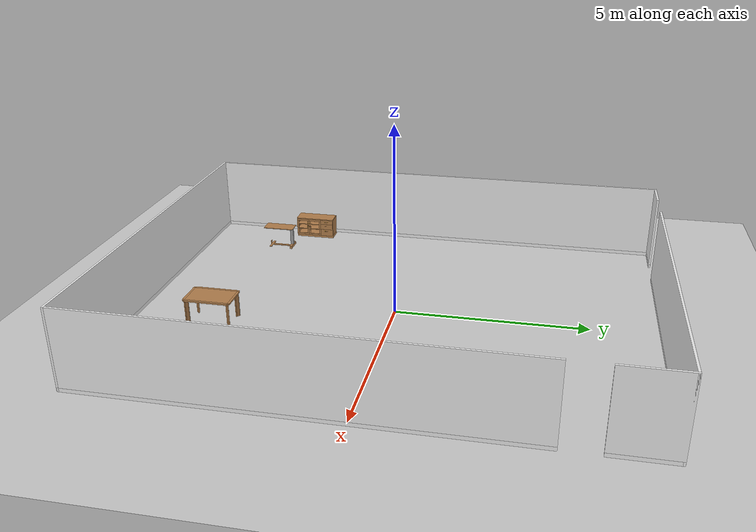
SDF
<sdf version="1.6">
 <world name="megaweb">
  <model name="ground_plane">
   <static>1</static>
   <link name="link">
    <collision name="collision">
     <geometry><plane><normal>0 0 1</normal><size>100 100</size></plane></geometry>
     <surface><friction><ode><mu>100</mu><mu2>50</mu2></ode></friction></surface>
    </collision>
    <visual name="visual">
     <cast_shadows>0</cast_shadows>
     <geometry><plane><normal>0 0 1</normal><size>100 100</size></plane></geometry>
     <material>
      <script><uri>file://media/materials/scripts/gazebo.material</uri><name>Gazebo/Grey</name></script>
     </material>
    </visual>
   </link>
  </model>
  <model name="full_outside_wall">
   <link name="link">
    <inertial>
     <mass>50</mass>
     <inertia><ixx>1</ixx><ixy>0</ixy><ixz>0</ixz><iyy>1</iyy><iyz>0</iyz><izz>1</izz></inertia>
    </inertial>
    <visual name="x00_13y00_bottom_frame">
     <pose>5.0375 -0.0275 0.05 0 -0 0</pose>
     <geometry><box><size>10.185 0.055 0.1</size></box></geometry>
     <material>
      <script><uri>model://base_materials/color/scripts</uri><name>hsr_color/white</name></script>
     </material>
    </visual>
    <collision name="x00_13y00_collision_bottom_frame">
     <pose>5.0375 -0.0275 0.05 0 -0 0</pose>
     <geometry><box><size>10.185 0.055 0.1</size></box></geometry>
    </collision>
    <visual name="wall_x00_13y00">
     <pose>5.0375 -0.0275 1.095 0 -0 0</pose>
     <geometry><box><size>10.185 0.055 1.99</size></box></geometry>
     <material>
      <script>
       <uri>model://base_materials/wall/scripts</uri>
       <uri>model://base_materials/wall/textures</uri>
       <name>wall/white_noise</name>
      </script>
     </material>
    </visual>
    <collision name="wall_x00_13y00">
     <pose>5.0375 -0.002 1.095 0 -0 0</pose>
     <geometry><box><size>10.08 0.055 1.99</size></box></geometry>
    </collision>
    <visual name="x00y00_15_bottom_frame">
     <pose>-0.0275 6.59 0.05 0 -0 0</pose>
     <geometry><box><size>0.055 13.29 0.1</size></box></geometry>
     <material>
      <script><uri>model://base_materials/color/scripts</uri><name>hsr_color/white</name></script>
     </material>
    </visual>
    <collision name="x00y00_15_collision_bottom_frame">
     <pose>-0.0275 6.59 0.05 0 -0 0</pose>
     <geometry><box><size>0.055 13.29 0.1</size></box></geometry>
    </collision>
    <visual name="wall_x00y00_15">
     <pose>-0.0275 6.59 1.095 0 -0 0</pose>
     <geometry><box><size>0.055 13.29 1.99</size></box></geometry>
     <material>
      <script>
       <uri>model://base_materials/wall/scripts</uri>
       <uri>model://base_materials/wall/textures</uri>
       <name>wall/white_noise</name>
      </script>
     </material>
    </visual>
    <collision name="wall_x00y00_x00y15">
     <pose>-0.002 6.59 1.095 0 -0 0</pose>
     <geometry><box><size>0.002 13.29 1.99</size></box></geometry>
    </collision>
    <visual name="x13y00_12_bottom_frame">
     <pose>10.1025 5.3725 0.05 0 -0 0</pose>
     <geometry><box><size>0.055 10.855 0.1</size></box></geometry>
     <material>
      <script><uri>model://base_materials/color/scripts</uri><name>hsr_color/white</name></script>
     </material>
    </visual>
    <collision name="x13y00_12_collision_bottom_frame">
     <pose>10.1025 5.3725 0.05 0 -0 0</pose>
     <geometry><box><size>0.055 10.855 0.1</size></box></geometry>
    </collision>
    <visual name="wall_x13y00_12">
     <pose>10.1025 5.3725 1.095 0 -0 0</pose>
     <geometry><box><size>0.055 10.855 1.99</size></box></geometry>
     <material>
      <script>
       <uri>model://base_materials/wall/scripts</uri>
       <uri>model://base_materials/wall/textures</uri>
       <name>wall/white_noise</name>
      </script>
     </material>
    </visual>
    <collision name="wall_x13y00_12">
     <pose>10.1025 5.3725 1.095 0 -0 0</pose>
     <geometry><box><size>0.055 10.855 1.99</size></box></geometry>
    </collision>
    <visual name="x13y14_16_bottom_frame">
     <pose>10.1025 12.4675 0.05 0 -0 0</pose>
     <geometry><box><size>0.055 1.535 0.1</size></box></geometry>
     <material>
      <script><uri>model://base_materials/color/scripts</uri><name>hsr_color/white</name></script>
     </material>
    </visual>
    <collision name="x13y14_16_collision_bottom_frame">
     <pose>10.1025 12.4675 0.05 0 -0 0</pose>
     <geometry><box><size>0.055 1.535 0.1</size></box></geometry>
    </collision>
    <visual name="wall_x13y14_x13y16">
     <pose>10.1025 12.4675 1.095 0 -0 0</pose>
     <geometry><box><size>0.055 1.535 1.99</size></box></geometry>
     <material>
      <script>
       <uri>model://base_materials/wall/scripts</uri>
       <uri>model://base_materials/wall/textures</uri>
       <name>wall/white_noise</name>
      </script>
     </material>
    </visual>
    <collision name="wall_x13y14_x13y16">
     <pose>10.1025 12.4675 1.095 0 -0 0</pose>
     <geometry><box><size>0.055 1.535 1.99</size></box></geometry>
    </collision>
    <visual name="x00_01y16_bottom_frame">
     <pose>0.4225 13.2075 0.05 0 -0 0</pose>
     <geometry><box><size>0.955 0.055 0.1</size></box></geometry>
     <material>
      <script><uri>model://base_materials/color/scripts</uri><name>hsr_color/white</name></script>
     </material>
    </visual>
    <collision name="x00_01y16_collision_bottom_frame">
     <pose>0.4225 13.2075 0.05 0 -0 0</pose>
     <geometry><box><size>0.955 0.055 0.1</size></box></geometry>
    </collision>
    <visual name="wall_x00_01y16">
     <pose>0.4225 13.2075 1.095 0 -0 0</pose>
     <geometry><box><size>0.955 0.055 1.99</size></box></geometry>
     <material>
      <script>
       <uri>model://base_materials/wall/scripts</uri>
       <uri>model://base_materials/wall/textures</uri>
       <name>wall/white_noise</name>
      </script>
     </material>
    </visual>
    <collision name="wall_x00_x01y16">
     <pose>0.4225 13.2075 1.095 0 -0 0</pose>
     <geometry><box><size>0.955 0.055 1.99</size></box></geometry>
    </collision>
    <visual name="x03_13y16_bottom_frame">
     <pose>5.965 13.2075 0.05 0 -0 0</pose>
     <geometry><box><size>8.33 0.05 0.1</size></box></geometry>
     <material>
      <script><uri>model://base_materials/color/scripts</uri><name>hsr_color/white</name></script>
     </material>
    </visual>
    <collision name="x03_13y16_collision_bottom_frame">
     <pose>5.965 13.2075 0.05 0 -0 0</pose>
     <geometry><box><size>8.33 0.05 0.1</size></box></geometry>
    </collision>
    <visual name="wall_x03_13y16">
     <pose>5.965 13.2075 1.095 0 -0 0</pose>
     <geometry><box><size>8.33 0.055 1.99</size></box></geometry>
     <material>
      <script>
       <uri>model://base_materials/wall/scripts</uri>
       <uri>model://base_materials/wall/textures</uri>
       <name>wall/white_noise</name>
      </script>
     </material>
    </visual>
    <collision name="wall_x03_13y16">
     <pose>5.965 13.2075 1.095 0 -0 0</pose>
     <geometry><box><size>8.33 0.055 1.99</size></box></geometry>
    </collision>
    <velocity_decay><linear>0</linear><angular>0</angular></velocity_decay>
   </link>
   <static>1</static>
   <pose>-5 -6.5 0 0 -0 0</pose>
  </model>
  <model name="living_sideboard">
   <link name="link">
    <inertial>
     <mass>10</mass>
     <inertia><ixx>1</ixx><ixy>0</ixy><ixz>0</ixz><iyy>1</iyy><iyz>0</iyz><izz>1</izz></inertia>
    </inertial>
    <visual name="left_board">
     <pose>-0.23 0.01 0.3375 0 -0 0</pose>
     <geometry><box><size>0.42 0.02 0.495</size></box></geometry>
     <material>
      <script><uri>model://base_materials/wood/scripts/wood.material</uri><name>base_materials/wood</name></script>
     </material>
    </visual>
    <collision name="collision_left_board">
     <pose>-0.23 0.01 0.3375 0 -0 0</pose>
     <geometry><box><size>0.42 0.02 0.495</size></box></geometry>
    </collision>
    <visual name="back_board">
     <pose>-0.42 0.575 0.2925 0 -0 0</pose>
     <geometry><box><size>0.02 1.11 0.585</size></box></geometry>
     <material>
      <script><uri>model://base_materials/wood/scripts/wood.material</uri><name>base_materials/wood</name></script>
     </material>
    </visual>
    <collision name="collision_back_board">
     <pose>-0.42 0.575 0.2925 0 -0 0</pose>
     <geometry><box><size>0.02 1.11 0.585</size></box></geometry>
    </collision>
    <visual name="right_board">
     <pose>-0.23 1.14 0.3375 0 -0 0</pose>
     <geometry><box><size>0.42 0.02 0.495</size></box></geometry>
     <material>
      <script><uri>model://base_materials/wood/scripts/wood.material</uri><name>base_materials/wood</name></script>
     </material>
    </visual>
    <collision name="collision_right_board">
     <pose>-0.23 1.14 0.3375 0 -0 0</pose>
     <geometry><box><size>0.42 0.02 0.495</size></box></geometry>
    </collision>
    <visual name="center_vertical_board1">
     <pose>-0.23 0.74 0.3375 0 -0 0</pose>
     <geometry><box><size>0.42 0.02 0.495</size></box></geometry>
     <material>
      <script><uri>model://base_materials/wood/scripts/wood.material</uri><name>base_materials/wood</name></script>
     </material>
    </visual>
    <collision name="collision_center_vertical_board1">
     <pose>-0.23 0.74 0.3375 0 -0 0</pose>
     <geometry><box><size>0.42 0.02 0.495</size></box></geometry>
    </collision>
    <visual name="top_board">
     <pose>-0.22 0.575 0.6 0 -0 0</pose>
     <geometry><box><size>0.44 1.15 0.03</size></box></geometry>
     <material>
      <script><uri>model://base_materials/wood/scripts/wood.material</uri><name>base_materials/wood</name></script>
     </material>
    </visual>
    <collision name="collision_top_board">
     <pose>-0.22 0.575 0.6 0 -0 0</pose>
     <geometry><box><size>0.44 1.15 0.03</size></box></geometry>
    </collision>
    <visual name="bottom_board">
     <pose>-0.23 0.575 0.045 0 -0 0</pose>
     <geometry><box><size>0.42 1.15 0.09</size></box></geometry>
     <material>
      <script><uri>model://base_materials/wood/scripts/wood.material</uri><name>base_materials/wood</name></script>
     </material>
    </visual>
    <collision name="collision_bottom_board">
     <pose>-0.23 0.575 0.045 0 -0 0</pose>
     <geometry><box><size>0.42 1.15 0.09</size></box></geometry>
    </collision>
    <visual name="1st_shelf">
     <pose>-0.225 0.37 0.259 0 -0 0</pose>
     <geometry><box><size>0.36 0.72 0.018</size></box></geometry>
     <material>
      <script><uri>model://base_materials/wood/scripts/wood.material</uri><name>base_materials/wood</name></script>
     </material>
    </visual>
    <collision name="collision_1st_shelf">
     <pose>-0.225 0.37 0.259 0 -0 0</pose>
     <geometry><box><size>0.36 0.72 0.018</size></box></geometry>
    </collision>
    <visual name="2nd_shelf">
     <pose>-0.225 0.37 0.407 0 -0 0</pose>
     <geometry><box><size>0.36 0.72 0.018</size></box></geometry>
     <material>
      <script><uri>model://base_materials/wood/scripts/wood.material</uri><name>base_materials/wood</name></script>
     </material>
    </visual>
    <collision name="collision_2nd_shelf">
     <pose>-0.225 0.37 0.407 0 -0 0</pose>
     <geometry><box><size>0.36 0.72 0.018</size></box></geometry>
    </collision>
    <visual name="1st_drawer">
     <pose>-0.2025 0.95 0.52 0 -0 0</pose>
     <geometry><box><size>0.405 0.38 0.13</size></box></geometry>
     <material>
      <script><uri>model://base_materials/wood/scripts/wood.material</uri><name>base_materials/wood</name></script>
     </material>
    </visual>
    <collision name="collision_1st_drawer">
     <pose>-0.2025 0.95 0.52 0 -0 0</pose>
     <geometry><box><size>0.405 0.38 0.13</size></box></geometry>
    </collision>
    <visual name="1st_drawer_handle_l1">
     <pose>0.015 0.9015 0.535 3.14159 1.57079 3.14159</pose>
     <geometry><cylinder><radius>0.006</radius><length>0.03</length></cylinder></geometry>
     <material>
      <ambient>1 0.84314 0 1</ambient>
      <diffuse>1 0.84314 0 1</diffuse>
      <specular>0.1 0.1 0.1 1</specular>
     </material>
    </visual>
    <collision name="collision_1st_drawer_handle_l1">
     <pose>0.015 0.9015 0.535 3.14159 1.57079 3.14159</pose>
     <geometry><cylinder><radius>0.006</radius><length>0.03</length></cylinder></geometry>
    </collision>
    <visual name="1st_drawer_handle_l2">
     <pose>0.03 0.9015 0.535 0 -0 0</pose>
     <geometry><sphere><radius>0.006</radius></sphere></geometry>
     <material>
      <ambient>1 0.84314 0 1</ambient>
      <diffuse>1 0.84314 0 1</diffuse>
      <specular>0.1 0.1 0.1 1</specular>
     </material>
    </visual>
    <collision name="collision_1st_drawer_handle_l2">
     <pose>0.03 0.9015 0.535 0 -0 0</pose>
     <geometry><sphere><radius>0.006</radius></sphere></geometry>
    </collision>
    <visual name="1st_drawer_handle_r1">
     <pose>0.015 0.9985 0.535 3.14159 1.57079 3.14159</pose>
     <geometry><cylinder><radius>0.006</radius><length>0.03</length></cylinder></geometry>
     <material>
      <ambient>1 0.84314 0 1</ambient>
      <diffuse>1 0.84314 0 1</diffuse>
      <specular>0.1 0.1 0.1 1</specular>
     </material>
    </visual>
    <collision name="collision_1st_drawer_handle_r1">
     <pose>0.015 0.9985 0.535 3.14159 1.57079 3.14159</pose>
     <geometry><cylinder><radius>0.006</radius><length>0.03</length></cylinder></geometry>
    </collision>
    <visual name="1st_drawer_handle_r2">
     <pose>0.03 0.9985 0.535 0 -0 0</pose>
     <geometry><sphere><radius>0.006</radius></sphere></geometry>
     <material>
      <ambient>1 0.84314 0 1</ambient>
      <diffuse>1 0.84314 0 1</diffuse>
      <specular>0.1 0.1 0.1 1</specular>
     </material>
    </visual>
    <collision name="collision_1st_drawer_handle_r2">
     <pose>0.03 0.9985 0.535 0 -0 0</pose>
     <geometry><sphere><radius>0.006</radius></sphere></geometry>
    </collision>
    <visual name="1st_drawer_handle_center">
     <pose>0.03 0.95 0.535 1.5708 -0 0</pose>
     <geometry><cylinder><radius>0.006</radius><length>0.097</length></cylinder></geometry>
     <material>
      <script><uri>model://base_materials/wood/scripts/wood.material</uri><name>base_materials/wood</name></script>
     </material>
    </visual>
    <collision name="collision_1st_drawer_handle_center">
     <pose>0.03 0.95 0.535 1.5708 -0 0</pose>
     <geometry><cylinder><radius>0.006</radius><length>0.097</length></cylinder></geometry>
    </collision>
    <visual name="2nd_drawer">
     <pose>-0.2025 0.95 0.37 0 -0 0</pose>
     <geometry><box><size>0.405 0.38 0.17</size></box></geometry>
     <material>
      <script><uri>model://base_materials/wood/scripts/wood.material</uri><name>base_materials/wood</name></script>
     </material>
    </visual>
    <collision name="collision_2nd_drawer">
     <pose>-0.2025 0.95 0.37 0 -0 0</pose>
     <geometry><box><size>0.405 0.38 0.17</size></box></geometry>
    </collision>
    <visual name="2nd_drawer_handle_l1">
     <pose>0.015 0.9015 0.405 3.14159 1.57079 3.14159</pose>
     <geometry><cylinder><radius>0.006</radius><length>0.03</length></cylinder></geometry>
     <material>
      <ambient>1 0.84314 0 1</ambient>
      <diffuse>1 0.84314 0 1</diffuse>
      <specular>0.1 0.1 0.1 1</specular>
     </material>
    </visual>
    <collision name="collision_2nd_drawer_handle_l1">
     <pose>0.015 0.9015 0.405 3.14159 1.57079 3.14159</pose>
     <geometry><cylinder><radius>0.006</radius><length>0.03</length></cylinder></geometry>
    </collision>
    <visual name="2nd_drawer_handle_l2">
     <pose>0.03 0.9015 0.405 0 -0 0</pose>
     <geometry><sphere><radius>0.006</radius></sphere></geometry>
     <material>
      <ambient>1 0.84314 0 1</ambient>
      <diffuse>1 0.84314 0 1</diffuse>
      <specular>0.1 0.1 0.1 1</specular>
     </material>
    </visual>
    <collision name="collision_2nd_drawer_handle_l2">
     <pose>0.03 0.9015 0.405 0 -0 0</pose>
     <geometry><sphere><radius>0.006</radius></sphere></geometry>
    </collision>
    <visual name="2nd_drawer_handle_r1">
     <pose>0.015 0.9985 0.405 3.14159 1.57079 3.14159</pose>
     <geometry><cylinder><radius>0.006</radius><length>0.03</length></cylinder></geometry>
     <material>
      <ambient>1 0.84314 0 1</ambient>
      <diffuse>1 0.84314 0 1</diffuse>
      <specular>0.1 0.1 0.1 1</specular>
     </material>
    </visual>
    <collision name="collision_2nd_drawer_handle_r1">
     <pose>0.015 0.9985 0.405 3.14159 1.57079 3.14159</pose>
     <geometry><cylinder><radius>0.006</radius><length>0.03</length></cylinder></geometry>
    </collision>
    <visual name="2nd_drawer_handle_r2">
     <pose>0.03 0.9985 0.405 0 -0 0</pose>
     <geometry><sphere><radius>0.006</radius></sphere></geometry>
     <material>
      <ambient>1 0.84314 0 1</ambient>
      <diffuse>1 0.84314 0 1</diffuse>
      <specular>0.1 0.1 0.1 1</specular>
     </material>
    </visual>
    <collision name="collision_2nd_drawer_handle_r2">
     <pose>0.03 0.9985 0.405 0 -0 0</pose>
     <geometry><sphere><radius>0.006</radius></sphere></geometry>
    </collision>
    <visual name="2nd_drawer_handle_center">
     <pose>0.03 0.95 0.405 1.5708 -0 0</pose>
     <geometry><cylinder><radius>0.006</radius><length>0.097</length></cylinder></geometry>
     <material>
      <script><uri>model://base_materials/wood/scripts/wood.material</uri><name>base_materials/wood</name></script>
     </material>
    </visual>
    <collision name="collision_2nd_drawer_handle_center">
     <pose>0.03 0.95 0.405 1.5708 -0 0</pose>
     <geometry><cylinder><radius>0.006</radius><length>0.097</length></cylinder></geometry>
    </collision>
    <visual name="3rd_drawer">
     <pose>-0.2025 0.95 0.18 0 -0 0</pose>
     <geometry><box><size>0.405 0.38 0.21</size></box></geometry>
     <material>
      <script><uri>model://base_materials/wood/scripts/wood.material</uri><name>base_materials/wood</name></script>
     </material>
    </visual>
    <collision name="collision_3rd_drawer">
     <pose>-0.2025 0.95 0.18 0 -0 0</pose>
     <geometry><box><size>0.405 0.38 0.21</size></box></geometry>
    </collision>
    <visual name="3rd_drawer_handle_l1">
     <pose>0.015 0.9015 0.235 3.14159 1.57079 3.14159</pose>
     <geometry><cylinder><radius>0.006</radius><length>0.03</length></cylinder></geometry>
     <material>
      <ambient>1 0.84314 0 1</ambient>
      <diffuse>1 0.84314 0 1</diffuse>
      <specular>0.1 0.1 0.1 1</specular>
     </material>
    </visual>
    <collision name="collision_3rd_drawer_handle_l1">
     <pose>0.015 0.9015 0.235 3.14159 1.57079 3.14159</pose>
     <geometry><cylinder><radius>0.006</radius><length>0.03</length></cylinder></geometry>
    </collision>
    <visual name="3rd_drawer_handle_l2">
     <pose>0.03 0.9015 0.235 0 -0 0</pose>
     <geometry><sphere><radius>0.006</radius></sphere></geometry>
     <material>
      <ambient>1 0.84314 0 1</ambient>
      <diffuse>1 0.84314 0 1</diffuse>
      <specular>0.1 0.1 0.1 1</specular>
     </material>
    </visual>
    <collision name="collision_3rd_drawer_handle_l2">
     <pose>0.03 0.9015 0.235 0 -0 0</pose>
     <geometry><sphere><radius>0.006</radius></sphere></geometry>
    </collision>
    <visual name="3rd_drawer_handle_r1">
     <pose>0.015 0.9985 0.235 3.14159 1.57079 3.14159</pose>
     <geometry><cylinder><radius>0.006</radius><length>0.03</length></cylinder></geometry>
     <material>
      <ambient>1 0.84314 0 1</ambient>
      <diffuse>1 0.84314 0 1</diffuse>
      <specular>0.1 0.1 0.1 1</specular>
     </material>
    </visual>
    <collision name="collision_3rd_drawer_handle_r1">
     <pose>0.015 0.9985 0.235 3.14159 1.57079 3.14159</pose>
     <geometry><cylinder><radius>0.006</radius><length>0.03</length></cylinder></geometry>
    </collision>
    <visual name="3rd_drawer_handle_r2">
     <pose>0.03 0.9985 0.235 0 -0 0</pose>
     <geometry><sphere><radius>0.006</radius></sphere></geometry>
     <material>
      <ambient>1 0.84314 0 1</ambient>
      <diffuse>1 0.84314 0 1</diffuse>
      <specular>0.1 0.1 0.1 1</specular>
     </material>
    </visual>
    <collision name="collision_3rd_drawer_handle_r2">
     <pose>0.03 0.9985 0.235 0 -0 0</pose>
     <geometry><sphere><radius>0.006</radius></sphere></geometry>
    </collision>
    <visual name="3rd_drawer_handle_center">
     <pose>0.03 0.95 0.235 1.5708 -0 0</pose>
     <geometry><cylinder><radius>0.006</radius><length>0.097</length></cylinder></geometry>
     <material>
      <script><uri>model://base_materials/wood/scripts/wood.material</uri><name>base_materials/wood</name></script>
     </material>
    </visual>
    <collision name="collision_3rd_drawer_handle_center">
     <pose>0.03 0.95 0.235 1.5708 -0 0</pose>
     <geometry><cylinder><radius>0.006</radius><length>0.097</length></cylinder></geometry>
    </collision>
    <visual name="left_door_left_frame">
     <pose>-0.01 0.025 0.3275 0 -0 0</pose>
     <geometry><box><size>0.02 0.05 0.405</size></box></geometry>
     <material>
      <script><uri>model://base_materials/wood/scripts/wood.material</uri><name>base_materials/wood</name></script>
     </material>
    </visual>
    <collision name="collision_left_door_left_frame">
     <pose>-0.01 0.025 0.3275 0 -0 0</pose>
     <geometry><box><size>0.02 0.05 0.405</size></box></geometry>
    </collision>
    <visual name="left_door_right_frame">
     <pose>-0.01 0.355 0.3275 0 -0 0</pose>
     <geometry><box><size>0.02 0.05 0.405</size></box></geometry>
     <material>
      <script><uri>model://base_materials/wood/scripts/wood.material</uri><name>base_materials/wood</name></script>
     </material>
    </visual>
    <collision name="collision_left_door_right_frame">
     <pose>-0.01 0.355 0.3275 0 -0 0</pose>
     <geometry><box><size>0.02 0.05 0.405</size></box></geometry>
    </collision>
    <visual name="left_door_handle_top1">
     <pose>0.015 0.355 0.4475 3.14159 1.57079 3.14159</pose>
     <geometry><cylinder><radius>0.006</radius><length>0.03</length></cylinder></geometry>
     <material>
      <ambient>1 0.84314 0 1</ambient>
      <diffuse>1 0.84314 0 1</diffuse>
      <specular>0.1 0.1 0.1 1</specular>
     </material>
    </visual>
    <collision name="collision_left_door_handle_top1">
     <pose>0.015 0.355 0.4475 3.14159 1.57079 3.14159</pose>
     <geometry><cylinder><radius>0.006</radius><length>0.03</length></cylinder></geometry>
    </collision>
    <visual name="left_door_handle_top2">
     <pose>0.03 0.355 0.4475 0 -0 0</pose>
     <geometry><sphere><radius>0.006</radius></sphere></geometry>
     <material>
      <ambient>1 0.84314 0 1</ambient>
      <diffuse>1 0.84314 0 1</diffuse>
      <specular>0.1 0.1 0.1 1</specular>
     </material>
    </visual>
    <collision name="collision_left_door_handle_top2">
     <pose>0.03 0.355 0.4475 0 -0 0</pose>
     <geometry><sphere><radius>0.006</radius></sphere></geometry>
    </collision>
    <visual name="left_door_handle_bottom1">
     <pose>0.015 0.355 0.3505 3.14159 1.57079 3.14159</pose>
     <geometry><cylinder><radius>0.006</radius><length>0.03</length></cylinder></geometry>
     <material>
      <ambient>1 0.84314 0 1</ambient>
      <diffuse>1 0.84314 0 1</diffuse>
      <specular>0.1 0.1 0.1 1</specular>
     </material>
    </visual>
    <collision name="collision_left_door_handle_bottom1">
     <pose>0.015 0.355 0.3505 3.14159 1.57079 3.14159</pose>
     <geometry><cylinder><radius>0.006</radius><length>0.03</length></cylinder></geometry>
    </collision>
    <visual name="left_door_handle_bottom2">
     <pose>0.03 0.355 0.3505 0 -0 0</pose>
     <geometry><sphere><radius>0.006</radius></sphere></geometry>
     <material>
      <ambient>1 0.84314 0 1</ambient>
      <diffuse>1 0.84314 0 1</diffuse>
      <specular>0.1 0.1 0.1 1</specular>
     </material>
    </visual>
    <collision name="collision_left_door_handle_bottom2">
     <pose>0.03 0.355 0.3505 0 -0 0</pose>
     <geometry><sphere><radius>0.006</radius></sphere></geometry>
    </collision>
    <visual name="left_door_handle_center">
     <pose>0.03 0.355 0.399 0 -0 0</pose>
     <geometry><cylinder><radius>0.006</radius><length>0.097</length></cylinder></geometry>
     <material>
      <script><uri>model://base_materials/wood/scripts/wood.material</uri><name>base_materials/wood</name></script>
     </material>
    </visual>
    <collision name="collision_left_door_handle_center">
     <pose>0.03 0.355 0.399 0 -0 0</pose>
     <geometry><cylinder><radius>0.006</radius><length>0.097</length></cylinder></geometry>
    </collision>
    <visual name="left_door_top_frame">
     <pose>-0.01 0.19 0.5575 0 -0 0</pose>
     <geometry><box><size>0.02 0.38 0.055</size></box></geometry>
     <material>
      <script><uri>model://base_materials/wood/scripts/wood.material</uri><name>base_materials/wood</name></script>
     </material>
    </visual>
    <collision name="collision_left_door_top_frame">
     <pose>-0.01 0.19 0.5575 0 -0 0</pose>
     <geometry><box><size>0.02 0.38 0.055</size></box></geometry>
    </collision>
    <visual name="left_door_bottom_frame">
     <pose>-0.01 0.19 0.1 0 -0 0</pose>
     <geometry><box><size>0.02 0.38 0.05</size></box></geometry>
     <material>
      <script><uri>model://base_materials/wood/scripts/wood.material</uri><name>base_materials/wood</name></script>
     </material>
    </visual>
    <collision name="collision_left_door_bottom_frame">
     <pose>-0.01 0.19 0.1 0 -0 0</pose>
     <geometry><box><size>0.02 0.38 0.05</size></box></geometry>
    </collision>
    <visual name="right_door_left_frame">
     <pose>-0.01 0.405 0.3275 0 -0 0</pose>
     <geometry><box><size>0.02 0.05 0.405</size></box></geometry>
     <material>
      <script><uri>model://base_materials/wood/scripts/wood.material</uri><name>base_materials/wood</name></script>
     </material>
    </visual>
    <collision name="collision_right_door_left_frame">
     <pose>-0.01 0.405 0.3275 0 -0 0</pose>
     <geometry><box><size>0.02 0.05 0.405</size></box></geometry>
    </collision>
    <visual name="right_door_right_frame">
     <pose>-0.01 0.735 0.3275 0 -0 0</pose>
     <geometry><box><size>0.02 0.05 0.405</size></box></geometry>
     <material>
      <script><uri>model://base_materials/wood/scripts/wood.material</uri><name>base_materials/wood</name></script>
     </material>
    </visual>
    <collision name="collision_right_door_right_frame">
     <pose>-0.01 0.735 0.3275 0 -0 0</pose>
     <geometry><box><size>0.02 0.05 0.405</size></box></geometry>
    </collision>
    <visual name="right_door_top_frame">
     <pose>-0.01 0.57 0.5575 0 -0 0</pose>
     <geometry><box><size>0.02 0.38 0.055</size></box></geometry>
     <material>
      <script><uri>model://base_materials/wood/scripts/wood.material</uri><name>base_materials/wood</name></script>
     </material>
    </visual>
    <collision name="collision_right_door_top_frame">
     <pose>-0.01 0.57 0.5575 0 -0 0</pose>
     <geometry><box><size>0.02 0.38 0.055</size></box></geometry>
    </collision>
    <visual name="right_door_bottom_frame">
     <pose>-0.01 0.57 0.1 0 -0 0</pose>
     <geometry><box><size>0.02 0.38 0.05</size></box></geometry>
     <material>
      <script><uri>model://base_materials/wood/scripts/wood.material</uri><name>base_materials/wood</name></script>
     </material>
    </visual>
    <collision name="collision_right_door_bottom_frame">
     <pose>-0.01 0.57 0.1 0 -0 0</pose>
     <geometry><box><size>0.02 0.38 0.05</size></box></geometry>
    </collision>
    <visual name="right_door_handle_top1">
     <pose>0.015 0.405 0.4475 3.14159 1.57079 3.14159</pose>
     <geometry><cylinder><radius>0.006</radius><length>0.03</length></cylinder></geometry>
     <material>
      <ambient>1 0.84314 0 1</ambient>
      <diffuse>1 0.84314 0 1</diffuse>
      <specular>0.1 0.1 0.1 1</specular>
     </material>
    </visual>
    <collision name="collision_right_door_handle_top1">
     <pose>0.015 0.405 0.4475 3.14159 1.57079 3.14159</pose>
     <geometry><cylinder><radius>0.006</radius><length>0.03</length></cylinder></geometry>
    </collision>
    <visual name="right_door_handle_top2">
     <pose>0.03 0.405 0.4475 0 -0 0</pose>
     <geometry><sphere><radius>0.006</radius></sphere></geometry>
     <material>
      <ambient>1 0.84314 0 1</ambient>
      <diffuse>1 0.84314 0 1</diffuse>
      <specular>0.1 0.1 0.1 1</specular>
     </material>
    </visual>
    <collision name="collision_right_door_handle_top2">
     <pose>0.03 0.405 0.4475 0 -0 0</pose>
     <geometry><sphere><radius>0.006</radius></sphere></geometry>
    </collision>
    <visual name="right_door_handle_bottom1">
     <pose>0.015 0.405 0.3505 3.14159 1.57079 3.14159</pose>
     <geometry><cylinder><radius>0.006</radius><length>0.03</length></cylinder></geometry>
     <material>
      <ambient>1 0.84314 0 1</ambient>
      <diffuse>1 0.84314 0 1</diffuse>
      <specular>0.1 0.1 0.1 1</specular>
     </material>
    </visual>
    <collision name="collision_right_door_handle_bottom1">
     <pose>0.015 0.405 0.3505 3.14159 1.57079 3.14159</pose>
     <geometry><cylinder><radius>0.006</radius><length>0.03</length></cylinder></geometry>
    </collision>
    <visual name="right_door_handle_bottom2">
     <pose>0.03 0.405 0.3505 0 -0 0</pose>
     <geometry><sphere><radius>0.006</radius></sphere></geometry>
     <material>
      <ambient>1 0.84314 0 1</ambient>
      <diffuse>1 0.84314 0 1</diffuse>
      <specular>0.1 0.1 0.1 1</specular>
     </material>
    </visual>
    <collision name="collision_right_door_handle_bottom2">
     <pose>0.03 0.405 0.3505 0 -0 0</pose>
     <geometry><sphere><radius>0.006</radius></sphere></geometry>
    </collision>
    <visual name="right_door_handle_center">
     <pose>0.03 0.405 0.399 0 -0 0</pose>
     <geometry><cylinder><radius>0.006</radius><length>0.097</length></cylinder></geometry>
     <material>
      <script><uri>model://base_materials/wood/scripts/wood.material</uri><name>base_materials/wood</name></script>
     </material>
    </visual>
    <collision name="collision_right_door_handle_center">
     <pose>0.03 0.4 0.399 0 -0 0</pose>
     <geometry><cylinder><radius>0.006</radius><length>0.097</length></cylinder></geometry>
    </collision>
    <velocity_decay><linear>0</linear><angular>0</angular></velocity_decay>
   </link>
   <static>1</static>
   <pose>-4.43738 -4.03045 0 0 -0 0</pose>
  </model>
  <model name="bed_table">
   <link name="link">
    <inertial>
     <pose>0 0.449 0.001 0 -0 0</pose>
     <mass>10</mass>
     <inertia><ixx>1</ixx><ixy>0</ixy><ixz>0</ixz><iyy>1</iyy><iyz>0</iyz><izz>1</izz></inertia>
    </inertial>
    <visual name="top_board">
     <pose>0 0.449 0.625 0 -0 0</pose>
     <geometry><box><size>0.398 0.898 0.02</size></box></geometry>
     <material>
      <script><uri>model://base_materials/wood/scripts/wood.material</uri><name>base_materials/wood</name></script>
     </material>
    </visual>
    <collision name="collision_top_board">
     <pose>0 0.449 0.625 0 -0 0</pose>
     <geometry><box><size>0.398 0.898 0.02</size></box></geometry>
    </collision>
    <visual name="right_pole">
     <pose>0 0.817 0.3515 0 -0 0</pose>
     <geometry><box><size>0.072 0.094 0.527</size></box></geometry>
     <material>
      <script><uri>model://base_materials/color/scripts</uri><name>hsr_color/grey</name></script>
     </material>
    </visual>
    <collision name="collision_right_pole">
     <pose>0 0.817 0.3515 0 -0 0</pose>
     <geometry><box><size>0.072 0.094 0.527</size></box></geometry>
    </collision>
    <visual name="right_bottom_pole">
     <pose>0 0.8225 0.044 0 -0 0</pose>
     <geometry><box><size>0.42 0.063 0.088</size></box></geometry>
     <material>
      <script><uri>model://base_materials/wood/scripts/wood.material</uri><name>base_materials/wood</name></script>
     </material>
    </visual>
    <collision name="collision_right_bottom_pole">
     <pose>0 0.8225 0.044 0 -0 0</pose>
     <geometry><box><size>0.42 0.063 0.088</size></box></geometry>
    </collision>
    <visual name="bottom_center_pole">
     <pose>0 0.502 0.03 0 -0 0</pose>
     <geometry><box><size>0.06 0.578 0.03</size></box></geometry>
     <material>
      <script><uri>model://base_materials/wood/scripts/wood.material</uri><name>base_materials/wood</name></script>
     </material>
    </visual>
    <collision name="collision_bottom_center_pole">
     <pose>0 0.502 0.03 0 -0 0</pose>
     <geometry><box><size>0.06 0.578 0.03</size></box></geometry>
    </collision>
    <visual name="left_bottom_pole">
     <pose>0 0.18 0.0325 0 -0 0</pose>
     <geometry><box><size>0.418 0.066 0.025</size></box></geometry>
     <material>
      <script><uri>model://base_materials/wood/scripts/wood.material</uri><name>base_materials/wood</name></script>
     </material>
    </visual>
    <collision name="collision_left_bottom_pole">
     <pose>0 0.18 0.0325 0 -0 0</pose>
     <geometry><box><size>0.418 0.066 0.025</size></box></geometry>
    </collision>
    <visual name="marker_0010">
     <pose>0 0.14 0.093 0 -0 0</pose>
     <geometry><box><size>0.09 0.001 0.09</size></box></geometry>
     <material>
      <script>
       <uri>model://bed_table/marker/0010/scripts</uri>
       <uri>model://bed_table/marker/0010/textures</uri>
       <name>Marker/0010</name>
      </script>
     </material>
    </visual>
    <collision name="collision_marker_0010">
     <pose>0 0.14 0.093 0 -0 0</pose>
     <geometry><box><size>0.09 0.001 0.09</size></box></geometry>
    </collision>
    <visual name="marker_0010_back_plate">
     <pose>0 0.146 0.093 0 -0 0</pose>
     <geometry><box><size>0.09 0.01 0.09</size></box></geometry>
     <material>
      <script><uri>model://base_materials/wood/scripts/wood.material</uri><name>base_materials/wood</name></script>
     </material>
    </visual>
    <collision name="collision_marker_0010_back_plate">
     <pose>0 0.146 0.093 0 -0 0</pose>
     <geometry><box><size>0.09 0.01 0.09</size></box></geometry>
    </collision>
    <velocity_decay><linear>0</linear><angular>0</angular></velocity_decay>
   </link>
   <static>1</static>
   <pose>-3.60084 -4.75017 0 0 -0 0</pose>
  </model>
  <model name="kitchen_table">
   <link name="link">
    <inertial>
     <mass>10</mass>
     <inertia><ixx>1</ixx><ixy>0</ixy><ixz>0</ixz><iyy>1</iyy><iyz>0</iyz><izz>1</izz></inertia>
    </inertial>
    <visual name="center_board">
     <pose>0 0 0.68 0 -0 0</pose>
     <geometry><box><size>0.68 1.13 0.04</size></box></geometry>
     <material>
      <script><uri>model://base_materials/wood/scripts/wood.material</uri><name>base_materials/wood</name></script>
     </material>
    </visual>
    <collision name="collision_center_board">
     <pose>0 0 0.68 0 -0 0</pose>
     <geometry><box><size>0.68 1.13 0.04</size></box></geometry>
    </collision>
    <visual name="front_board">
     <pose>0.37 0 0.68 0 -0 0</pose>
     <geometry><box><size>0.06 1.13 0.04</size></box></geometry>
     <material>
      <script><uri>model://base_materials/wood/scripts/wood.material</uri><name>base_materials/wood</name></script>
     </material>
    </visual>
    <collision name="collision_front_board">
     <pose>0.37 0 0.68 0 -0 0</pose>
     <geometry><box><size>0.06 1.13 0.04</size></box></geometry>
    </collision>
    <visual name="back_board">
     <pose>-0.37 0 0.68 0 -0 0</pose>
     <geometry><box><size>0.06 1.13 0.04</size></box></geometry>
     <material>
      <script><uri>model://base_materials/wood/scripts/wood.material</uri><name>base_materials/wood</name></script>
     </material>
    </visual>
    <collision name="collision_back_board">
     <pose>-0.37 0 0.68 0 -0 0</pose>
     <geometry><box><size>0.06 1.13 0.04</size></box></geometry>
    </collision>
    <visual name="right_board">
     <pose>0 0.595 0.68 0 -0 0</pose>
     <geometry><box><size>0.68 0.06 0.04</size></box></geometry>
     <material>
      <script><uri>model://base_materials/wood/scripts/wood.material</uri><name>base_materials/wood</name></script>
     </material>
    </visual>
    <collision name="collision_right_board">
     <pose>0 0.595 0.68 0 -0 0</pose>
     <geometry><box><size>0.68 0.06 0.04</size></box></geometry>
    </collision>
    <visual name="left_board">
     <pose>0 -0.595 0.68 0 -0 0</pose>
     <geometry><box><size>0.68 0.06 0.04</size></box></geometry>
     <material>
      <script><uri>model://base_materials/wood/scripts/wood.material</uri><name>base_materials/wood</name></script>
     </material>
    </visual>
    <collision name="collision_left_board">
     <pose>0 -0.595 0.68 0 -0 0</pose>
     <geometry><box><size>0.68 0.06 0.04</size></box></geometry>
    </collision>
    <visual name="front_right_corner_board">
     <pose>0.34 0.565 0.68 0 -0 0</pose>
     <geometry><cylinder><radius>0.06</radius><length>0.039</length></cylinder></geometry>
     <material>
      <script><uri>model://base_materials/wood/scripts/wood.material</uri><name>base_materials/wood</name></script>
     </material>
    </visual>
    <collision name="collision_front_right_corner_board">
     <pose>0.34 0.565 0.68 0 -0 0</pose>
     <geometry><cylinder><radius>0.06</radius><length>0.039</length></cylinder></geometry>
    </collision>
    <visual name="front_left_corner_board">
     <pose>0.34 -0.565 0.68 0 -0 0</pose>
     <geometry><cylinder><radius>0.06</radius><length>0.039</length></cylinder></geometry>
     <material>
      <script><uri>model://base_materials/wood/scripts/wood.material</uri><name>base_materials/wood</name></script>
     </material>
    </visual>
    <collision name="collision_front_left_corner_board">
     <pose>0.34 -0.565 0.68 0 -0 0</pose>
     <geometry><cylinder><radius>0.06</radius><length>0.039</length></cylinder></geometry>
    </collision>
    <visual name="front_back_right_corner_board">
     <pose>-0.34 0.565 0.68 0 -0 0</pose>
     <geometry><cylinder><radius>0.06</radius><length>0.039</length></cylinder></geometry>
     <material>
      <script><uri>model://base_materials/wood/scripts/wood.material</uri><name>base_materials/wood</name></script>
     </material>
    </visual>
    <collision name="collision_back_right_corner_board">
     <pose>-0.34 0.565 0.68 0 -0 0</pose>
     <geometry><cylinder><radius>0.06</radius><length>0.039</length></cylinder></geometry>
    </collision>
    <visual name="front_back_left_corner_board">
     <pose>-0.34 -0.565 0.68 0 -0 0</pose>
     <geometry><cylinder><radius>0.06</radius><length>0.039</length></cylinder></geometry>
     <material>
      <script><uri>model://base_materials/wood/scripts/wood.material</uri><name>base_materials/wood</name></script>
     </material>
    </visual>
    <collision name="collision_back_left_corner_board">
     <pose>-0.34 -0.565 0.68 0 -0 0</pose>
     <geometry><cylinder><radius>0.06</radius><length>0.039</length></cylinder></geometry>
    </collision>
    <visual name="front_left_corner_frame1">
     <pose>0.345858 -0.57086 0.33 0 -0 0</pose>
     <geometry><cylinder><radius>0.02</radius><length>0.66</length></cylinder></geometry>
     <material>
      <script><uri>model://base_materials/wood/scripts/wood.material</uri><name>base_materials/wood</name></script>
     </material>
    </visual>
    <collision name="collision_front_left_corner_frame1">
     <pose>0.345858 -0.57086 0.33 0 -0 0</pose>
     <geometry><cylinder><radius>0.02</radius><length>0.66</length></cylinder></geometry>
    </collision>
    <visual name="front_left_corner_frame2">
     <pose>0.317574 -0.54257 0.33 0 -0 0.7854</pose>
     <geometry><box><size>0.04 0.08 0.66</size></box></geometry>
     <material>
      <script><uri>model://base_materials/wood/scripts/wood.material</uri><name>base_materials/wood</name></script>
     </material>
    </visual>
    <collision name="collision_front_left_corner_frame2">
     <pose>0.317574 -0.54257 0.33 0 -0 0.7854</pose>
     <geometry><box><size>0.04 0.08 0.66</size></box></geometry>
    </collision>
    <visual name="front_left_corner_frame3">
     <pose>0.289289 -0.51429 0.33 0 -0 0</pose>
     <geometry><cylinder><radius>0.02</radius><length>0.66</length></cylinder></geometry>
     <material>
      <script><uri>model://base_materials/wood/scripts/wood.material</uri><name>base_materials/wood</name></script>
     </material>
    </visual>
    <collision name="collision_front_left_corner_frame3">
     <pose>0.289289 -0.51429 0.33 0 -0 0</pose>
     <geometry><cylinder><radius>0.02</radius><length>0.66</length></cylinder></geometry>
    </collision>
    <visual name="front_right_corner_frame1">
     <pose>0.345858 0.57086 0.33 0 -0 0</pose>
     <geometry><cylinder><radius>0.02</radius><length>0.66</length></cylinder></geometry>
     <material>
      <script><uri>model://base_materials/wood/scripts/wood.material</uri><name>base_materials/wood</name></script>
     </material>
    </visual>
    <collision name="collision_front_right_corner_frame1">
     <pose>0.345858 0.57086 0.33 0 -0 0</pose>
     <geometry><cylinder><radius>0.02</radius><length>0.66</length></cylinder></geometry>
    </collision>
    <visual name="front_right_corner_frame2">
     <pose>0.317574 0.54257 0.33 0 0 -0.7854</pose>
     <geometry><box><size>0.04 0.08 0.66</size></box></geometry>
     <material>
      <script><uri>model://base_materials/wood/scripts/wood.material</uri><name>base_materials/wood</name></script>
     </material>
    </visual>
    <collision name="collision_front_right_corner_frame2">
     <pose>0.317574 0.54257 0.33 0 0 -0.7854</pose>
     <geometry><box><size>0.04 0.08 0.66</size></box></geometry>
    </collision>
    <visual name="front_right_corner_frame3">
     <pose>0.289289 0.51429 0.33 0 -0 0</pose>
     <geometry><cylinder><radius>0.02</radius><length>0.66</length></cylinder></geometry>
     <material>
      <script><uri>model://base_materials/wood/scripts/wood.material</uri><name>base_materials/wood</name></script>
     </material>
    </visual>
    <collision name="collision_front_right_corner_frame3">
     <pose>0.289289 0.51429 0.33 0 -0 0</pose>
     <geometry><cylinder><radius>0.02</radius><length>0.66</length></cylinder></geometry>
    </collision>
    <visual name="back_left_corner_frame1">
     <pose>-0.345858 -0.57086 0.33 0 -0 0</pose>
     <geometry><cylinder><radius>0.02</radius><length>0.66</length></cylinder></geometry>
     <material>
      <script><uri>model://base_materials/wood/scripts/wood.material</uri><name>base_materials/wood</name></script>
     </material>
    </visual>
    <collision name="collision_back_left_corner_frame1">
     <pose>-0.345858 -0.57086 0.33 0 -0 0</pose>
     <geometry><cylinder><radius>0.02</radius><length>0.66</length></cylinder></geometry>
    </collision>
    <visual name="back_left_corner_frame2">
     <pose>-0.317574 -0.54257 0.33 0 0 -0.7854</pose>
     <geometry><box><size>0.04 0.08 0.66</size></box></geometry>
     <material>
      <script><uri>model://base_materials/wood/scripts/wood.material</uri><name>base_materials/wood</name></script>
     </material>
    </visual>
    <collision name="collision_back_left_corner_frame2">
     <pose>-0.317574 -0.54257 0.33 0 0 -0.7854</pose>
     <geometry><box><size>0.04 0.08 0.66</size></box></geometry>
    </collision>
    <visual name="back_left_corner_frame3">
     <pose>-0.289289 -0.51429 0.33 0 -0 0</pose>
     <geometry><cylinder><radius>0.02</radius><length>0.66</length></cylinder></geometry>
     <material>
      <script><uri>model://base_materials/wood/scripts/wood.material</uri><name>base_materials/wood</name></script>
     </material>
    </visual>
    <collision name="collision_back_left_corner_frame3">
     <pose>-0.289289 -0.51429 0.33 0 -0 0</pose>
     <geometry><cylinder><radius>0.02</radius><length>0.66</length></cylinder></geometry>
    </collision>
    <visual name="back_right_corner_frame1">
     <pose>-0.345858 0.57086 0.33 0 -0 0</pose>
     <geometry><cylinder><radius>0.02</radius><length>0.66</length></cylinder></geometry>
     <material>
      <script><uri>model://base_materials/wood/scripts/wood.material</uri><name>base_materials/wood</name></script>
     </material>
    </visual>
    <collision name="collision_back_right_corner_frame1">
     <pose>-0.345858 0.57086 0.33 0 -0 0</pose>
     <geometry><cylinder><radius>0.02</radius><length>0.66</length></cylinder></geometry>
    </collision>
    <visual name="back_right_corner_frame2">
     <pose>-0.317574 0.54257 0.33 0 -0 0.7854</pose>
     <geometry><box><size>0.04 0.08 0.66</size></box></geometry>
     <material>
      <script><uri>model://base_materials/wood/scripts/wood.material</uri><name>base_materials/wood</name></script>
     </material>
    </visual>
    <collision name="collision_back_right_corner_frame2">
     <pose>-0.317574 0.54257 0.33 0 -0 0.7854</pose>
     <geometry><box><size>0.04 0.08 0.66</size></box></geometry>
    </collision>
    <visual name="back_right_corner_frame3">
     <pose>-0.289289 0.51429 0.33 0 -0 0</pose>
     <geometry><cylinder><radius>0.02</radius><length>0.66</length></cylinder></geometry>
     <material>
      <script><uri>model://base_materials/wood/scripts/wood.material</uri><name>base_materials/wood</name></script>
     </material>
    </visual>
    <collision name="collision_back_right_corner_frame3">
     <pose>-0.289289 0.51429 0.33 0 -0 0</pose>
     <geometry><cylinder><radius>0.02</radius><length>0.66</length></cylinder></geometry>
    </collision>
    <velocity_decay><linear>0</linear><angular>0</angular></velocity_decay>
   </link>
   <static>1</static>
   <pose>1.33359 -4.46673 0 0 -0 0</pose>
  </model>
 </world>
</sdf>
